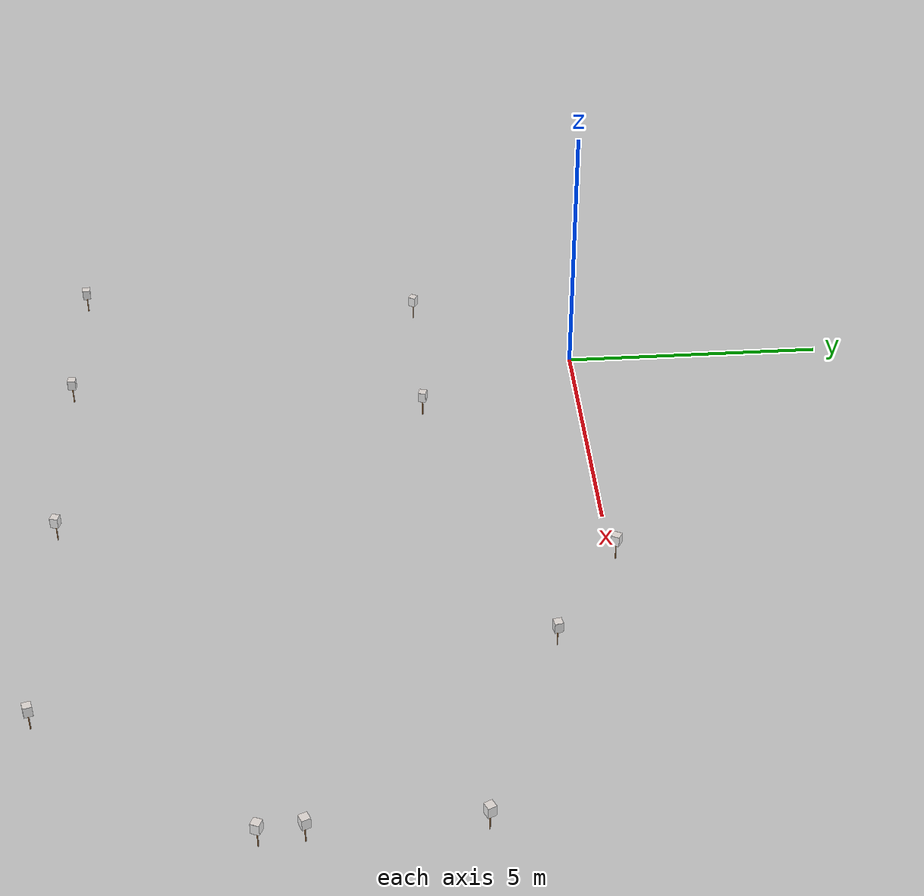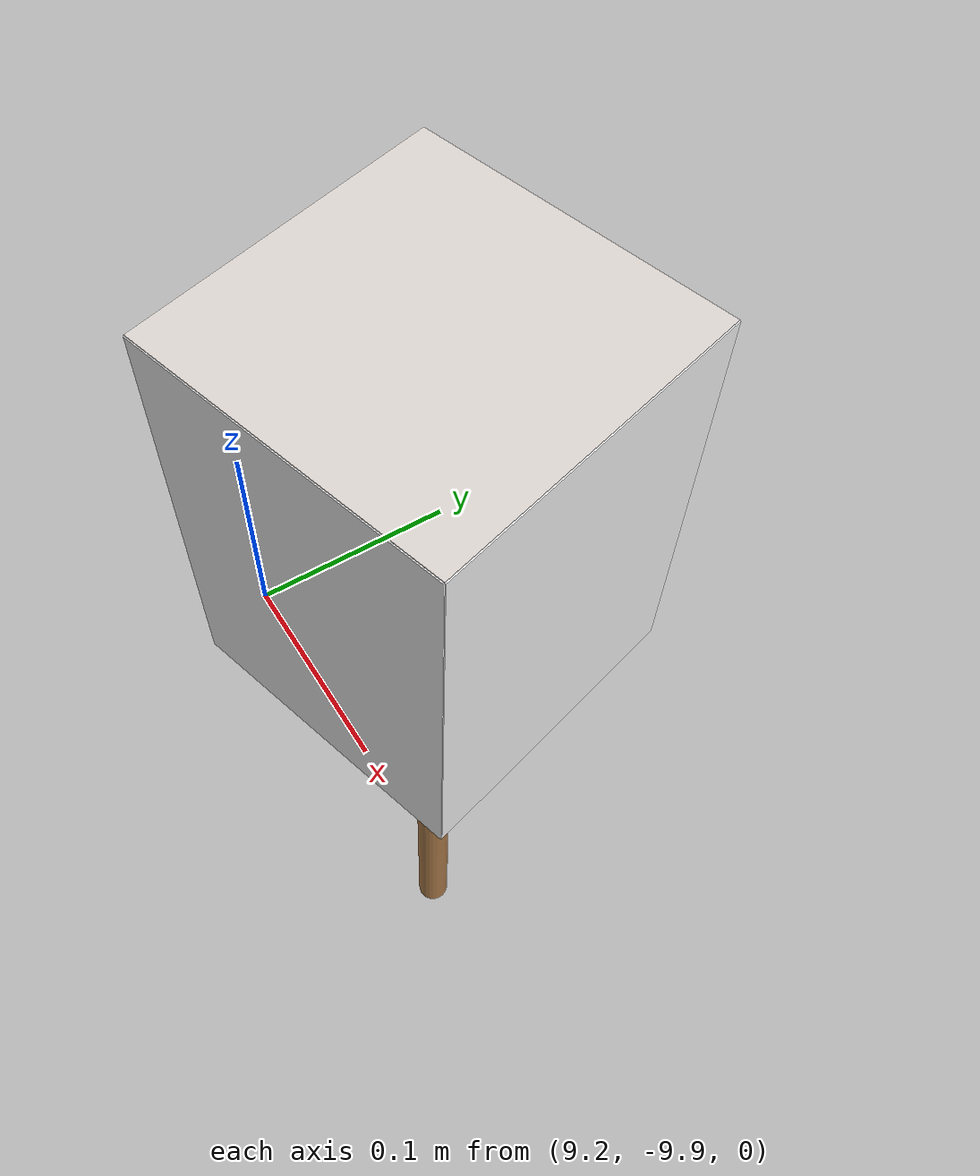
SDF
<sdf version="1.6">
 <world name="husarion_world">
  <physics name="1ms" type="ode">
   <max_step_size>0.01</max_step_size>
   <real_time_factor>1.0</real_time_factor>
  </physics>
  <plugin filename="gz-sim-contact-system" name="gz::sim::systems::Contact"/>
  <plugin filename="gz-sim-imu-system" name="gz::sim::systems::Imu"/>
  <plugin filename="gz-sim-physics-system" name="gz::sim::systems::Physics"/>
  <plugin filename="gz-sim-scene-broadcaster-system" name="gz::sim::systems::SceneBroadcaster"/>
  <plugin filename="gz-sim-sensors-system" name="gz::sim::systems::Sensors"/>
  <plugin filename="gz-sim-user-commands-system" name="gz::sim::systems::UserCommands"/>
  <spherical_coordinates>
   <surface_model>EARTH_WGS84</surface_model>
   <world_frame_orientation>ENU</world_frame_orientation>
   <latitude_deg>50.088384</latitude_deg>
   <longitude_deg>19.939128</longitude_deg>
   <elevation>0</elevation>
   <heading_deg>0</heading_deg>
  </spherical_coordinates>
  <include><uri>model://aruco_pole_textures/aruco_pole_10</uri><pose>12.20 -6.12 -0.1 0 0 -1.97</pose></include>
  <include><uri>model://aruco_pole_textures/aruco_pole_9</uri><pose>9.26 -9.84 -0.35 0 0 1.85</pose></include>
  <include><uri>model://aruco_pole_textures/aruco_pole_8</uri><pose>4.54 -9.86 -0.33 0 0 -0.27</pose></include>
  <include><uri>model://aruco_pole_textures/aruco_pole_7</uri><pose>0.63 -9.89 -0.07 0 0 3.14</pose></include>
  <include><uri>model://aruco_pole_textures/aruco_pole_6</uri><pose>-2.60 -9.88 -0.04 0 0 0.12</pose></include>
  <include><uri>model://aruco_pole_textures/aruco_pole_5</uri><pose>-2.29 -3.06 -0.34 0 0 -0.52</pose></include>
  <include><uri>model://aruco_pole_textures/aruco_pole_4</uri><pose>1.16 -3.05 -0.34 0 0 6.012</pose></include>
  <include><uri>model://aruco_pole_textures/aruco_pole_3</uri><pose>6.29 0.06 0.1 0 0 -0.52</pose></include>
  <include><uri>model://aruco_pole_textures/aruco_pole_2</uri><pose>7.94 -1.14 -0.34 0 0 4.889</pose></include>
  <include><uri>model://aruco_pole_textures/aruco_pole_1</uri><pose>12.21 -2.65 0.0 0 0 2.007</pose></include>
  <include><uri>model://aruco_pole_textures/aruco_pole_0</uri><pose>12.18 -5.41 -0.07 0 0 5.115</pose></include>
 </world>
</sdf>

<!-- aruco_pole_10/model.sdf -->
<sdf version="1.7">
  <!-- Auto-generated SDF for ArUco Pole with Tag 10 -->
  <!-- Box visual faces are 0.1 wide/deep, 0.2 high. Box is closed top/bottom. -->
  <model name="aruco_pole_10"> <!-- Descriptive model name -->
    <static>true</static>
    <link name="aruco_pole_link">

      <!-- === Pole === -->
      <collision name="pole_collision">
        <pose>0 0 0.17250 0 0 0</pose>
        <geometry><cylinder><radius>0.01000</radius><length>0.34500</length></cylinder></geometry>
      </collision>
      <visual name="pole_visual">
        <pose>0 0 0.17250 0 0 0</pose>
        <geometry><cylinder><radius>0.01000</radius><length>0.34500</length></cylinder></geometry>
        <material><script><uri>file://media/materials/scripts/gazebo.material</uri><name>Gazebo/Wood</name></script></material>
      </visual>

      <!-- === Main Marker Box COLLISION === -->
      <!-- Defines the physical boundary -->
      <collision name="box_collision">
        <pose>0 0 0.44500 0 0 0</pose>
        <geometry><box><size>0.15000 0.15000 0.20000</size></box></geometry>
      </collision>

      <!-- === Textured Side Panels (Visuals only) === -->
      <!-- Sized and positioned to match the collision box faces -->

      <!-- Front Face Panel (+X) -->
      <visual name="box_face_front_panel">
        <pose>0.07500 0 0.44500 0 0 0</pose>
        <!-- Size: Thickness(X), Width(Y=Depth), Height(Z) -->
        <geometry><box><size>0.00100 0.15000 0.20000</size></box></geometry>
        <material>
          <ambient>1 1 1 1</ambient><diffuse>1 1 1 1</diffuse><specular>0 0 0 1</specular>
          <pbr><metal>
            <albedo_map>model://aruco_pole_textures/materials/textures/aruco_tag_10.png</albedo_map>
            <metalness>0.0</metalness><roughness>1.0</roughness>
          </metal></pbr>
        </material>
      </visual>

      <!-- Back Face Panel (-X) -->
      <visual name="box_face_back_panel">
        <pose>-0.07500 0 0.44500 0 0 0</pose>
         <!-- Size: Thickness(X), Width(Y=Depth), Height(Z) -->
        <geometry><box><size>0.00100 0.15000 0.20000</size></box></geometry>
         <material>
           <ambient>1 1 1 1</ambient><diffuse>1 1 1 1</diffuse><specular>0 0 0 1</specular>
           <pbr><metal>
             <albedo_map>model://aruco_pole_textures/materials/textures/aruco_tag_10.png</albedo_map>
             <metalness>0.0</metalness><roughness>1.0</roughness>
           </metal></pbr>
         </material>
      </visual>

      <!-- Right Face Panel (+Y) -->
      <visual name="box_face_right_panel">
        <pose>0 0.07500 0.44500 0 0 0</pose>
         <!-- Size: Width(X), Thickness(Y), Height(Z) -->
        <geometry><box><size>0.15000 0.00100 0.20000</size></box></geometry>
         <material>
           <ambient>1 1 1 1</ambient><diffuse>1 1 1 1</diffuse><specular>0 0 0 1</specular>
           <pbr><metal>
             <albedo_map>model://aruco_pole_textures/materials/textures/aruco_tag_10.png</albedo_map>
             <metalness>0.0</metalness><roughness>1.0</roughness>
           </metal></pbr>
         </material>
      </visual>

      <!-- Left Face Panel (-Y) -->
      <visual name="box_face_left_panel">
        <pose>0 -0.07500 0.44500 0 0 0</pose>
        <!-- Size: Width(X), Thickness(Y), Height(Z) -->
        <geometry><box><size>0.15000 0.00100 0.20000</size></box></geometry>
         <material>
           <ambient>1 1 1 1</ambient><diffuse>1 1 1 1</diffuse><specular>0 0 0 1</specular>
           <pbr><metal>
             <albedo_map>model://aruco_pole_textures/materials/textures/aruco_tag_10.png</albedo_map>
             <metalness>0.0</metalness><roughness>1.0</roughness>
           </metal></pbr>
         </material>
      </visual>

      <!-- === Top and Bottom Caps (Visuals only, No Texture) === -->

      <!-- Top Face Panel (+Z) -->
      <visual name="box_face_top_panel">
        <pose>0 0 0.54500 0 0 0</pose>
        <!-- Size: Width(X), Length(Y=Depth), Thickness(Z) -->
        <geometry><box><size>0.15000 0.15000 0.00100</size></box></geometry>
        <material>
          <ambient>0.590 0.571 0.560 1.0</ambient>
          <diffuse>0.843 0.816 0.800 1</diffuse>
          <specular>0.1 0.1 0.1 1</specular>
        </material>
      </visual>

      <!-- Bottom Face Panel (-Z) -->
      <visual name="box_face_bottom_panel">
        <pose>0 0 0.34500 0 0 0</pose>
        <!-- Size: Width(X), Length(Y=Depth), Thickness(Z) -->
        <geometry><box><size>0.15000 0.15000 0.00100</size></box></geometry>
         <material>
           <ambient>0.590 0.571 0.560 1.0</ambient>
           <diffuse>0.843 0.816 0.800 1</diffuse>
           <specular>0.1 0.1 0.1 1</specular>
         </material>
      </visual>

    </link>
  </model>
</sdf>

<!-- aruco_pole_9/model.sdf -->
<sdf version="1.7">
  <!-- Auto-generated SDF for ArUco Pole with Tag 9 -->
  <!-- Box visual faces are 0.1 wide/deep, 0.2 high. Box is closed top/bottom. -->
  <model name="aruco_pole_9"> <!-- Descriptive model name -->
    <static>true</static>
    <link name="aruco_pole_link">

      <!-- === Pole === -->
      <collision name="pole_collision">
        <pose>0 0 0.17250 0 0 0</pose>
        <geometry><cylinder><radius>0.01000</radius><length>0.34500</length></cylinder></geometry>
      </collision>
      <visual name="pole_visual">
        <pose>0 0 0.17250 0 0 0</pose>
        <geometry><cylinder><radius>0.01000</radius><length>0.34500</length></cylinder></geometry>
        <material><script><uri>file://media/materials/scripts/gazebo.material</uri><name>Gazebo/Wood</name></script></material>
      </visual>

      <!-- === Main Marker Box COLLISION === -->
      <!-- Defines the physical boundary -->
      <collision name="box_collision">
        <pose>0 0 0.44500 0 0 0</pose>
        <geometry><box><size>0.15000 0.15000 0.20000</size></box></geometry>
      </collision>

      <!-- === Textured Side Panels (Visuals only) === -->
      <!-- Sized and positioned to match the collision box faces -->

      <!-- Front Face Panel (+X) -->
      <visual name="box_face_front_panel">
        <pose>0.07500 0 0.44500 0 0 0</pose>
        <!-- Size: Thickness(X), Width(Y=Depth), Height(Z) -->
        <geometry><box><size>0.00100 0.15000 0.20000</size></box></geometry>
        <material>
          <ambient>1 1 1 1</ambient><diffuse>1 1 1 1</diffuse><specular>0 0 0 1</specular>
          <pbr><metal>
            <albedo_map>model://aruco_pole_textures/materials/textures/aruco_tag_9.png</albedo_map>
            <metalness>0.0</metalness><roughness>1.0</roughness>
          </metal></pbr>
        </material>
      </visual>

      <!-- Back Face Panel (-X) -->
      <visual name="box_face_back_panel">
        <pose>-0.07500 0 0.44500 0 0 0</pose>
         <!-- Size: Thickness(X), Width(Y=Depth), Height(Z) -->
        <geometry><box><size>0.00100 0.15000 0.20000</size></box></geometry>
         <material>
           <ambient>1 1 1 1</ambient><diffuse>1 1 1 1</diffuse><specular>0 0 0 1</specular>
           <pbr><metal>
             <albedo_map>model://aruco_pole_textures/materials/textures/aruco_tag_9.png</albedo_map>
             <metalness>0.0</metalness><roughness>1.0</roughness>
           </metal></pbr>
         </material>
      </visual>

      <!-- Right Face Panel (+Y) -->
      <visual name="box_face_right_panel">
        <pose>0 0.07500 0.44500 0 0 0</pose>
         <!-- Size: Width(X), Thickness(Y), Height(Z) -->
        <geometry><box><size>0.15000 0.00100 0.20000</size></box></geometry>
         <material>
           <ambient>1 1 1 1</ambient><diffuse>1 1 1 1</diffuse><specular>0 0 0 1</specular>
           <pbr><metal>
             <albedo_map>model://aruco_pole_textures/materials/textures/aruco_tag_9.png</albedo_map>
             <metalness>0.0</metalness><roughness>1.0</roughness>
           </metal></pbr>
         </material>
      </visual>

      <!-- Left Face Panel (-Y) -->
      <visual name="box_face_left_panel">
        <pose>0 -0.07500 0.44500 0 0 0</pose>
        <!-- Size: Width(X), Thickness(Y), Height(Z) -->
        <geometry><box><size>0.15000 0.00100 0.20000</size></box></geometry>
         <material>
           <ambient>1 1 1 1</ambient><diffuse>1 1 1 1</diffuse><specular>0 0 0 1</specular>
           <pbr><metal>
             <albedo_map>model://aruco_pole_textures/materials/textures/aruco_tag_9.png</albedo_map>
             <metalness>0.0</metalness><roughness>1.0</roughness>
           </metal></pbr>
         </material>
      </visual>

      <!-- === Top and Bottom Caps (Visuals only, No Texture) === -->

      <!-- Top Face Panel (+Z) -->
      <visual name="box_face_top_panel">
        <pose>0 0 0.54500 0 0 0</pose>
        <!-- Size: Width(X), Length(Y=Depth), Thickness(Z) -->
        <geometry><box><size>0.15000 0.15000 0.00100</size></box></geometry>
        <material>
          <ambient>0.590 0.571 0.560 1.0</ambient>
          <diffuse>0.843 0.816 0.800 1</diffuse>
          <specular>0.1 0.1 0.1 1</specular>
        </material>
      </visual>

      <!-- Bottom Face Panel (-Z) -->
      <visual name="box_face_bottom_panel">
        <pose>0 0 0.34500 0 0 0</pose>
        <!-- Size: Width(X), Length(Y=Depth), Thickness(Z) -->
        <geometry><box><size>0.15000 0.15000 0.00100</size></box></geometry>
         <material>
           <ambient>0.590 0.571 0.560 1.0</ambient>
           <diffuse>0.843 0.816 0.800 1</diffuse>
           <specular>0.1 0.1 0.1 1</specular>
         </material>
      </visual>

    </link>
  </model>
</sdf>

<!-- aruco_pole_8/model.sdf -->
<sdf version="1.7">
  <!-- Auto-generated SDF for ArUco Pole with Tag 8 -->
  <!-- Box visual faces are 0.1 wide/deep, 0.2 high. Box is closed top/bottom. -->
  <model name="aruco_pole_8"> <!-- Descriptive model name -->
    <static>true</static>
    <link name="aruco_pole_link">

      <!-- === Pole === -->
      <collision name="pole_collision">
        <pose>0 0 0.17250 0 0 0</pose>
        <geometry><cylinder><radius>0.01000</radius><length>0.34500</length></cylinder></geometry>
      </collision>
      <visual name="pole_visual">
        <pose>0 0 0.17250 0 0 0</pose>
        <geometry><cylinder><radius>0.01000</radius><length>0.34500</length></cylinder></geometry>
        <material><script><uri>file://media/materials/scripts/gazebo.material</uri><name>Gazebo/Wood</name></script></material>
      </visual>

      <!-- === Main Marker Box COLLISION === -->
      <!-- Defines the physical boundary -->
      <collision name="box_collision">
        <pose>0 0 0.44500 0 0 0</pose>
        <geometry><box><size>0.15000 0.15000 0.20000</size></box></geometry>
      </collision>

      <!-- === Textured Side Panels (Visuals only) === -->
      <!-- Sized and positioned to match the collision box faces -->

      <!-- Front Face Panel (+X) -->
      <visual name="box_face_front_panel">
        <pose>0.07500 0 0.44500 0 0 0</pose>
        <!-- Size: Thickness(X), Width(Y=Depth), Height(Z) -->
        <geometry><box><size>0.00100 0.15000 0.20000</size></box></geometry>
        <material>
          <ambient>1 1 1 1</ambient><diffuse>1 1 1 1</diffuse><specular>0 0 0 1</specular>
          <pbr><metal>
            <albedo_map>model://aruco_pole_textures/materials/textures/aruco_tag_8.png</albedo_map>
            <metalness>0.0</metalness><roughness>1.0</roughness>
          </metal></pbr>
        </material>
      </visual>

      <!-- Back Face Panel (-X) -->
      <visual name="box_face_back_panel">
        <pose>-0.07500 0 0.44500 0 0 0</pose>
         <!-- Size: Thickness(X), Width(Y=Depth), Height(Z) -->
        <geometry><box><size>0.00100 0.15000 0.20000</size></box></geometry>
         <material>
           <ambient>1 1 1 1</ambient><diffuse>1 1 1 1</diffuse><specular>0 0 0 1</specular>
           <pbr><metal>
             <albedo_map>model://aruco_pole_textures/materials/textures/aruco_tag_8.png</albedo_map>
             <metalness>0.0</metalness><roughness>1.0</roughness>
           </metal></pbr>
         </material>
      </visual>

      <!-- Right Face Panel (+Y) -->
      <visual name="box_face_right_panel">
        <pose>0 0.07500 0.44500 0 0 0</pose>
         <!-- Size: Width(X), Thickness(Y), Height(Z) -->
        <geometry><box><size>0.15000 0.00100 0.20000</size></box></geometry>
         <material>
           <ambient>1 1 1 1</ambient><diffuse>1 1 1 1</diffuse><specular>0 0 0 1</specular>
           <pbr><metal>
             <albedo_map>model://aruco_pole_textures/materials/textures/aruco_tag_8.png</albedo_map>
             <metalness>0.0</metalness><roughness>1.0</roughness>
           </metal></pbr>
         </material>
      </visual>

      <!-- Left Face Panel (-Y) -->
      <visual name="box_face_left_panel">
        <pose>0 -0.07500 0.44500 0 0 0</pose>
        <!-- Size: Width(X), Thickness(Y), Height(Z) -->
        <geometry><box><size>0.15000 0.00100 0.20000</size></box></geometry>
         <material>
           <ambient>1 1 1 1</ambient><diffuse>1 1 1 1</diffuse><specular>0 0 0 1</specular>
           <pbr><metal>
             <albedo_map>model://aruco_pole_textures/materials/textures/aruco_tag_8.png</albedo_map>
             <metalness>0.0</metalness><roughness>1.0</roughness>
           </metal></pbr>
         </material>
      </visual>

      <!-- === Top and Bottom Caps (Visuals only, No Texture) === -->

      <!-- Top Face Panel (+Z) -->
      <visual name="box_face_top_panel">
        <pose>0 0 0.54500 0 0 0</pose>
        <!-- Size: Width(X), Length(Y=Depth), Thickness(Z) -->
        <geometry><box><size>0.15000 0.15000 0.00100</size></box></geometry>
        <material>
          <ambient>0.590 0.571 0.560 1.0</ambient>
          <diffuse>0.843 0.816 0.800 1</diffuse>
          <specular>0.1 0.1 0.1 1</specular>
        </material>
      </visual>

      <!-- Bottom Face Panel (-Z) -->
      <visual name="box_face_bottom_panel">
        <pose>0 0 0.34500 0 0 0</pose>
        <!-- Size: Width(X), Length(Y=Depth), Thickness(Z) -->
        <geometry><box><size>0.15000 0.15000 0.00100</size></box></geometry>
         <material>
           <ambient>0.590 0.571 0.560 1.0</ambient>
           <diffuse>0.843 0.816 0.800 1</diffuse>
           <specular>0.1 0.1 0.1 1</specular>
         </material>
      </visual>

    </link>
  </model>
</sdf>

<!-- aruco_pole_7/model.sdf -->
<sdf version="1.7">
  <!-- Auto-generated SDF for ArUco Pole with Tag 7 -->
  <!-- Box visual faces are 0.1 wide/deep, 0.2 high. Box is closed top/bottom. -->
  <model name="aruco_pole_7"> <!-- Descriptive model name -->
    <static>true</static>
    <link name="aruco_pole_link">

      <!-- === Pole === -->
      <collision name="pole_collision">
        <pose>0 0 0.17250 0 0 0</pose>
        <geometry><cylinder><radius>0.01000</radius><length>0.34500</length></cylinder></geometry>
      </collision>
      <visual name="pole_visual">
        <pose>0 0 0.17250 0 0 0</pose>
        <geometry><cylinder><radius>0.01000</radius><length>0.34500</length></cylinder></geometry>
        <material><script><uri>file://media/materials/scripts/gazebo.material</uri><name>Gazebo/Wood</name></script></material>
      </visual>

      <!-- === Main Marker Box COLLISION === -->
      <!-- Defines the physical boundary -->
      <collision name="box_collision">
        <pose>0 0 0.44500 0 0 0</pose>
        <geometry><box><size>0.15000 0.15000 0.20000</size></box></geometry>
      </collision>

      <!-- === Textured Side Panels (Visuals only) === -->
      <!-- Sized and positioned to match the collision box faces -->

      <!-- Front Face Panel (+X) -->
      <visual name="box_face_front_panel">
        <pose>0.07500 0 0.44500 0 0 0</pose>
        <!-- Size: Thickness(X), Width(Y=Depth), Height(Z) -->
        <geometry><box><size>0.00100 0.15000 0.20000</size></box></geometry>
        <material>
          <ambient>1 1 1 1</ambient><diffuse>1 1 1 1</diffuse><specular>0 0 0 1</specular>
          <pbr><metal>
            <albedo_map>model://aruco_pole_textures/materials/textures/aruco_tag_7.png</albedo_map>
            <metalness>0.0</metalness><roughness>1.0</roughness>
          </metal></pbr>
        </material>
      </visual>

      <!-- Back Face Panel (-X) -->
      <visual name="box_face_back_panel">
        <pose>-0.07500 0 0.44500 0 0 0</pose>
         <!-- Size: Thickness(X), Width(Y=Depth), Height(Z) -->
        <geometry><box><size>0.00100 0.15000 0.20000</size></box></geometry>
         <material>
           <ambient>1 1 1 1</ambient><diffuse>1 1 1 1</diffuse><specular>0 0 0 1</specular>
           <pbr><metal>
             <albedo_map>model://aruco_pole_textures/materials/textures/aruco_tag_7.png</albedo_map>
             <metalness>0.0</metalness><roughness>1.0</roughness>
           </metal></pbr>
         </material>
      </visual>

      <!-- Right Face Panel (+Y) -->
      <visual name="box_face_right_panel">
        <pose>0 0.07500 0.44500 0 0 0</pose>
         <!-- Size: Width(X), Thickness(Y), Height(Z) -->
        <geometry><box><size>0.15000 0.00100 0.20000</size></box></geometry>
         <material>
           <ambient>1 1 1 1</ambient><diffuse>1 1 1 1</diffuse><specular>0 0 0 1</specular>
           <pbr><metal>
             <albedo_map>model://aruco_pole_textures/materials/textures/aruco_tag_7.png</albedo_map>
             <metalness>0.0</metalness><roughness>1.0</roughness>
           </metal></pbr>
         </material>
      </visual>

      <!-- Left Face Panel (-Y) -->
      <visual name="box_face_left_panel">
        <pose>0 -0.07500 0.44500 0 0 0</pose>
        <!-- Size: Width(X), Thickness(Y), Height(Z) -->
        <geometry><box><size>0.15000 0.00100 0.20000</size></box></geometry>
         <material>
           <ambient>1 1 1 1</ambient><diffuse>1 1 1 1</diffuse><specular>0 0 0 1</specular>
           <pbr><metal>
             <albedo_map>model://aruco_pole_textures/materials/textures/aruco_tag_7.png</albedo_map>
             <metalness>0.0</metalness><roughness>1.0</roughness>
           </metal></pbr>
         </material>
      </visual>

      <!-- === Top and Bottom Caps (Visuals only, No Texture) === -->

      <!-- Top Face Panel (+Z) -->
      <visual name="box_face_top_panel">
        <pose>0 0 0.54500 0 0 0</pose>
        <!-- Size: Width(X), Length(Y=Depth), Thickness(Z) -->
        <geometry><box><size>0.15000 0.15000 0.00100</size></box></geometry>
        <material>
          <ambient>0.590 0.571 0.560 1.0</ambient>
          <diffuse>0.843 0.816 0.800 1</diffuse>
          <specular>0.1 0.1 0.1 1</specular>
        </material>
      </visual>

      <!-- Bottom Face Panel (-Z) -->
      <visual name="box_face_bottom_panel">
        <pose>0 0 0.34500 0 0 0</pose>
        <!-- Size: Width(X), Length(Y=Depth), Thickness(Z) -->
        <geometry><box><size>0.15000 0.15000 0.00100</size></box></geometry>
         <material>
           <ambient>0.590 0.571 0.560 1.0</ambient>
           <diffuse>0.843 0.816 0.800 1</diffuse>
           <specular>0.1 0.1 0.1 1</specular>
         </material>
      </visual>

    </link>
  </model>
</sdf>

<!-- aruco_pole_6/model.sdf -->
<sdf version="1.7">
  <!-- Auto-generated SDF for ArUco Pole with Tag 6 -->
  <!-- Box visual faces are 0.1 wide/deep, 0.2 high. Box is closed top/bottom. -->
  <model name="aruco_pole_6"> <!-- Descriptive model name -->
    <static>true</static>
    <link name="aruco_pole_link">

      <!-- === Pole === -->
      <collision name="pole_collision">
        <pose>0 0 0.17250 0 0 0</pose>
        <geometry><cylinder><radius>0.01000</radius><length>0.34500</length></cylinder></geometry>
      </collision>
      <visual name="pole_visual">
        <pose>0 0 0.17250 0 0 0</pose>
        <geometry><cylinder><radius>0.01000</radius><length>0.34500</length></cylinder></geometry>
        <material><script><uri>file://media/materials/scripts/gazebo.material</uri><name>Gazebo/Wood</name></script></material>
      </visual>

      <!-- === Main Marker Box COLLISION === -->
      <!-- Defines the physical boundary -->
      <collision name="box_collision">
        <pose>0 0 0.44500 0 0 0</pose>
        <geometry><box><size>0.15000 0.15000 0.20000</size></box></geometry>
      </collision>

      <!-- === Textured Side Panels (Visuals only) === -->
      <!-- Sized and positioned to match the collision box faces -->

      <!-- Front Face Panel (+X) -->
      <visual name="box_face_front_panel">
        <pose>0.07500 0 0.44500 0 0 0</pose>
        <!-- Size: Thickness(X), Width(Y=Depth), Height(Z) -->
        <geometry><box><size>0.00100 0.15000 0.20000</size></box></geometry>
        <material>
          <ambient>1 1 1 1</ambient><diffuse>1 1 1 1</diffuse><specular>0 0 0 1</specular>
          <pbr><metal>
            <albedo_map>model://aruco_pole_textures/materials/textures/aruco_tag_6.png</albedo_map>
            <metalness>0.0</metalness><roughness>1.0</roughness>
          </metal></pbr>
        </material>
      </visual>

      <!-- Back Face Panel (-X) -->
      <visual name="box_face_back_panel">
        <pose>-0.07500 0 0.44500 0 0 0</pose>
         <!-- Size: Thickness(X), Width(Y=Depth), Height(Z) -->
        <geometry><box><size>0.00100 0.15000 0.20000</size></box></geometry>
         <material>
           <ambient>1 1 1 1</ambient><diffuse>1 1 1 1</diffuse><specular>0 0 0 1</specular>
           <pbr><metal>
             <albedo_map>model://aruco_pole_textures/materials/textures/aruco_tag_6.png</albedo_map>
             <metalness>0.0</metalness><roughness>1.0</roughness>
           </metal></pbr>
         </material>
      </visual>

      <!-- Right Face Panel (+Y) -->
      <visual name="box_face_right_panel">
        <pose>0 0.07500 0.44500 0 0 0</pose>
         <!-- Size: Width(X), Thickness(Y), Height(Z) -->
        <geometry><box><size>0.15000 0.00100 0.20000</size></box></geometry>
         <material>
           <ambient>1 1 1 1</ambient><diffuse>1 1 1 1</diffuse><specular>0 0 0 1</specular>
           <pbr><metal>
             <albedo_map>model://aruco_pole_textures/materials/textures/aruco_tag_6.png</albedo_map>
             <metalness>0.0</metalness><roughness>1.0</roughness>
           </metal></pbr>
         </material>
      </visual>

      <!-- Left Face Panel (-Y) -->
      <visual name="box_face_left_panel">
        <pose>0 -0.07500 0.44500 0 0 0</pose>
        <!-- Size: Width(X), Thickness(Y), Height(Z) -->
        <geometry><box><size>0.15000 0.00100 0.20000</size></box></geometry>
         <material>
           <ambient>1 1 1 1</ambient><diffuse>1 1 1 1</diffuse><specular>0 0 0 1</specular>
           <pbr><metal>
             <albedo_map>model://aruco_pole_textures/materials/textures/aruco_tag_6.png</albedo_map>
             <metalness>0.0</metalness><roughness>1.0</roughness>
           </metal></pbr>
         </material>
      </visual>

      <!-- === Top and Bottom Caps (Visuals only, No Texture) === -->

      <!-- Top Face Panel (+Z) -->
      <visual name="box_face_top_panel">
        <pose>0 0 0.54500 0 0 0</pose>
        <!-- Size: Width(X), Length(Y=Depth), Thickness(Z) -->
        <geometry><box><size>0.15000 0.15000 0.00100</size></box></geometry>
        <material>
          <ambient>0.590 0.571 0.560 1.0</ambient>
          <diffuse>0.843 0.816 0.800 1</diffuse>
          <specular>0.1 0.1 0.1 1</specular>
        </material>
      </visual>

      <!-- Bottom Face Panel (-Z) -->
      <visual name="box_face_bottom_panel">
        <pose>0 0 0.34500 0 0 0</pose>
        <!-- Size: Width(X), Length(Y=Depth), Thickness(Z) -->
        <geometry><box><size>0.15000 0.15000 0.00100</size></box></geometry>
         <material>
           <ambient>0.590 0.571 0.560 1.0</ambient>
           <diffuse>0.843 0.816 0.800 1</diffuse>
           <specular>0.1 0.1 0.1 1</specular>
         </material>
      </visual>

    </link>
  </model>
</sdf>

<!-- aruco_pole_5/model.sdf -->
<sdf version="1.7">
  <!-- Auto-generated SDF for ArUco Pole with Tag 5 -->
  <!-- Box visual faces are 0.1 wide/deep, 0.2 high. Box is closed top/bottom. -->
  <model name="aruco_pole_5"> <!-- Descriptive model name -->
    <static>true</static>
    <link name="aruco_pole_link">

      <!-- === Pole === -->
      <collision name="pole_collision">
        <pose>0 0 0.17250 0 0 0</pose>
        <geometry><cylinder><radius>0.01000</radius><length>0.34500</length></cylinder></geometry>
      </collision>
      <visual name="pole_visual">
        <pose>0 0 0.17250 0 0 0</pose>
        <geometry><cylinder><radius>0.01000</radius><length>0.34500</length></cylinder></geometry>
        <material><script><uri>file://media/materials/scripts/gazebo.material</uri><name>Gazebo/Wood</name></script></material>
      </visual>

      <!-- === Main Marker Box COLLISION === -->
      <!-- Defines the physical boundary -->
      <collision name="box_collision">
        <pose>0 0 0.44500 0 0 0</pose>
        <geometry><box><size>0.15000 0.15000 0.20000</size></box></geometry>
      </collision>

      <!-- === Textured Side Panels (Visuals only) === -->
      <!-- Sized and positioned to match the collision box faces -->

      <!-- Front Face Panel (+X) -->
      <visual name="box_face_front_panel">
        <pose>0.07500 0 0.44500 0 0 0</pose>
        <!-- Size: Thickness(X), Width(Y=Depth), Height(Z) -->
        <geometry><box><size>0.00100 0.15000 0.20000</size></box></geometry>
        <material>
          <ambient>1 1 1 1</ambient><diffuse>1 1 1 1</diffuse><specular>0 0 0 1</specular>
          <pbr><metal>
            <albedo_map>model://aruco_pole_textures/materials/textures/aruco_tag_5.png</albedo_map>
            <metalness>0.0</metalness><roughness>1.0</roughness>
          </metal></pbr>
        </material>
      </visual>

      <!-- Back Face Panel (-X) -->
      <visual name="box_face_back_panel">
        <pose>-0.07500 0 0.44500 0 0 0</pose>
         <!-- Size: Thickness(X), Width(Y=Depth), Height(Z) -->
        <geometry><box><size>0.00100 0.15000 0.20000</size></box></geometry>
         <material>
           <ambient>1 1 1 1</ambient><diffuse>1 1 1 1</diffuse><specular>0 0 0 1</specular>
           <pbr><metal>
             <albedo_map>model://aruco_pole_textures/materials/textures/aruco_tag_5.png</albedo_map>
             <metalness>0.0</metalness><roughness>1.0</roughness>
           </metal></pbr>
         </material>
      </visual>

      <!-- Right Face Panel (+Y) -->
      <visual name="box_face_right_panel">
        <pose>0 0.07500 0.44500 0 0 0</pose>
         <!-- Size: Width(X), Thickness(Y), Height(Z) -->
        <geometry><box><size>0.15000 0.00100 0.20000</size></box></geometry>
         <material>
           <ambient>1 1 1 1</ambient><diffuse>1 1 1 1</diffuse><specular>0 0 0 1</specular>
           <pbr><metal>
             <albedo_map>model://aruco_pole_textures/materials/textures/aruco_tag_5.png</albedo_map>
             <metalness>0.0</metalness><roughness>1.0</roughness>
           </metal></pbr>
         </material>
      </visual>

      <!-- Left Face Panel (-Y) -->
      <visual name="box_face_left_panel">
        <pose>0 -0.07500 0.44500 0 0 0</pose>
        <!-- Size: Width(X), Thickness(Y), Height(Z) -->
        <geometry><box><size>0.15000 0.00100 0.20000</size></box></geometry>
         <material>
           <ambient>1 1 1 1</ambient><diffuse>1 1 1 1</diffuse><specular>0 0 0 1</specular>
           <pbr><metal>
             <albedo_map>model://aruco_pole_textures/materials/textures/aruco_tag_5.png</albedo_map>
             <metalness>0.0</metalness><roughness>1.0</roughness>
           </metal></pbr>
         </material>
      </visual>

      <!-- === Top and Bottom Caps (Visuals only, No Texture) === -->

      <!-- Top Face Panel (+Z) -->
      <visual name="box_face_top_panel">
        <pose>0 0 0.54500 0 0 0</pose>
        <!-- Size: Width(X), Length(Y=Depth), Thickness(Z) -->
        <geometry><box><size>0.15000 0.15000 0.00100</size></box></geometry>
        <material>
          <ambient>0.590 0.571 0.560 1.0</ambient>
          <diffuse>0.843 0.816 0.800 1</diffuse>
          <specular>0.1 0.1 0.1 1</specular>
        </material>
      </visual>

      <!-- Bottom Face Panel (-Z) -->
      <visual name="box_face_bottom_panel">
        <pose>0 0 0.34500 0 0 0</pose>
        <!-- Size: Width(X), Length(Y=Depth), Thickness(Z) -->
        <geometry><box><size>0.15000 0.15000 0.00100</size></box></geometry>
         <material>
           <ambient>0.590 0.571 0.560 1.0</ambient>
           <diffuse>0.843 0.816 0.800 1</diffuse>
           <specular>0.1 0.1 0.1 1</specular>
         </material>
      </visual>

    </link>
  </model>
</sdf>

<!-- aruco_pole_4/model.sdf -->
<sdf version="1.7">
  <!-- Auto-generated SDF for ArUco Pole with Tag 4 -->
  <!-- Box visual faces are 0.1 wide/deep, 0.2 high. Box is closed top/bottom. -->
  <model name="aruco_pole_4"> <!-- Descriptive model name -->
    <static>true</static>
    <link name="aruco_pole_link">

      <!-- === Pole === -->
      <collision name="pole_collision">
        <pose>0 0 0.17250 0 0 0</pose>
        <geometry><cylinder><radius>0.01000</radius><length>0.34500</length></cylinder></geometry>
      </collision>
      <visual name="pole_visual">
        <pose>0 0 0.17250 0 0 0</pose>
        <geometry><cylinder><radius>0.01000</radius><length>0.34500</length></cylinder></geometry>
        <material><script><uri>file://media/materials/scripts/gazebo.material</uri><name>Gazebo/Wood</name></script></material>
      </visual>

      <!-- === Main Marker Box COLLISION === -->
      <!-- Defines the physical boundary -->
      <collision name="box_collision">
        <pose>0 0 0.44500 0 0 0</pose>
        <geometry><box><size>0.15000 0.15000 0.20000</size></box></geometry>
      </collision>

      <!-- === Textured Side Panels (Visuals only) === -->
      <!-- Sized and positioned to match the collision box faces -->

      <!-- Front Face Panel (+X) -->
      <visual name="box_face_front_panel">
        <pose>0.07500 0 0.44500 0 0 0</pose>
        <!-- Size: Thickness(X), Width(Y=Depth), Height(Z) -->
        <geometry><box><size>0.00100 0.15000 0.20000</size></box></geometry>
        <material>
          <ambient>1 1 1 1</ambient><diffuse>1 1 1 1</diffuse><specular>0 0 0 1</specular>
          <pbr><metal>
            <albedo_map>model://aruco_pole_textures/materials/textures/aruco_tag_4.png</albedo_map>
            <metalness>0.0</metalness><roughness>1.0</roughness>
          </metal></pbr>
        </material>
      </visual>

      <!-- Back Face Panel (-X) -->
      <visual name="box_face_back_panel">
        <pose>-0.07500 0 0.44500 0 0 0</pose>
         <!-- Size: Thickness(X), Width(Y=Depth), Height(Z) -->
        <geometry><box><size>0.00100 0.15000 0.20000</size></box></geometry>
         <material>
           <ambient>1 1 1 1</ambient><diffuse>1 1 1 1</diffuse><specular>0 0 0 1</specular>
           <pbr><metal>
             <albedo_map>model://aruco_pole_textures/materials/textures/aruco_tag_4.png</albedo_map>
             <metalness>0.0</metalness><roughness>1.0</roughness>
           </metal></pbr>
         </material>
      </visual>

      <!-- Right Face Panel (+Y) -->
      <visual name="box_face_right_panel">
        <pose>0 0.07500 0.44500 0 0 0</pose>
         <!-- Size: Width(X), Thickness(Y), Height(Z) -->
        <geometry><box><size>0.15000 0.00100 0.20000</size></box></geometry>
         <material>
           <ambient>1 1 1 1</ambient><diffuse>1 1 1 1</diffuse><specular>0 0 0 1</specular>
           <pbr><metal>
             <albedo_map>model://aruco_pole_textures/materials/textures/aruco_tag_4.png</albedo_map>
             <metalness>0.0</metalness><roughness>1.0</roughness>
           </metal></pbr>
         </material>
      </visual>

      <!-- Left Face Panel (-Y) -->
      <visual name="box_face_left_panel">
        <pose>0 -0.07500 0.44500 0 0 0</pose>
        <!-- Size: Width(X), Thickness(Y), Height(Z) -->
        <geometry><box><size>0.15000 0.00100 0.20000</size></box></geometry>
         <material>
           <ambient>1 1 1 1</ambient><diffuse>1 1 1 1</diffuse><specular>0 0 0 1</specular>
           <pbr><metal>
             <albedo_map>model://aruco_pole_textures/materials/textures/aruco_tag_4.png</albedo_map>
             <metalness>0.0</metalness><roughness>1.0</roughness>
           </metal></pbr>
         </material>
      </visual>

      <!-- === Top and Bottom Caps (Visuals only, No Texture) === -->

      <!-- Top Face Panel (+Z) -->
      <visual name="box_face_top_panel">
        <pose>0 0 0.54500 0 0 0</pose>
        <!-- Size: Width(X), Length(Y=Depth), Thickness(Z) -->
        <geometry><box><size>0.15000 0.15000 0.00100</size></box></geometry>
        <material>
          <ambient>0.590 0.571 0.560 1.0</ambient>
          <diffuse>0.843 0.816 0.800 1</diffuse>
          <specular>0.1 0.1 0.1 1</specular>
        </material>
      </visual>

      <!-- Bottom Face Panel (-Z) -->
      <visual name="box_face_bottom_panel">
        <pose>0 0 0.34500 0 0 0</pose>
        <!-- Size: Width(X), Length(Y=Depth), Thickness(Z) -->
        <geometry><box><size>0.15000 0.15000 0.00100</size></box></geometry>
         <material>
           <ambient>0.590 0.571 0.560 1.0</ambient>
           <diffuse>0.843 0.816 0.800 1</diffuse>
           <specular>0.1 0.1 0.1 1</specular>
         </material>
      </visual>

    </link>
  </model>
</sdf>

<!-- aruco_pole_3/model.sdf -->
<sdf version="1.7">
  <!-- Auto-generated SDF for ArUco Pole with Tag 3 -->
  <!-- Box visual faces are 0.1 wide/deep, 0.2 high. Box is closed top/bottom. -->
  <model name="aruco_pole_3"> <!-- Descriptive model name -->
    <static>true</static>
    <link name="aruco_pole_link">

      <!-- === Pole === -->
      <collision name="pole_collision">
        <pose>0 0 0.17250 0 0 0</pose>
        <geometry><cylinder><radius>0.01000</radius><length>0.34500</length></cylinder></geometry>
      </collision>
      <visual name="pole_visual">
        <pose>0 0 0.17250 0 0 0</pose>
        <geometry><cylinder><radius>0.01000</radius><length>0.34500</length></cylinder></geometry>
        <material><script><uri>file://media/materials/scripts/gazebo.material</uri><name>Gazebo/Wood</name></script></material>
      </visual>

      <!-- === Main Marker Box COLLISION === -->
      <!-- Defines the physical boundary -->
      <collision name="box_collision">
        <pose>0 0 0.44500 0 0 0</pose>
        <geometry><box><size>0.15000 0.15000 0.20000</size></box></geometry>
      </collision>

      <!-- === Textured Side Panels (Visuals only) === -->
      <!-- Sized and positioned to match the collision box faces -->

      <!-- Front Face Panel (+X) -->
      <visual name="box_face_front_panel">
        <pose>0.07500 0 0.44500 0 0 0</pose>
        <!-- Size: Thickness(X), Width(Y=Depth), Height(Z) -->
        <geometry><box><size>0.00100 0.15000 0.20000</size></box></geometry>
        <material>
          <ambient>1 1 1 1</ambient><diffuse>1 1 1 1</diffuse><specular>0 0 0 1</specular>
          <pbr><metal>
            <albedo_map>model://aruco_pole_textures/materials/textures/aruco_tag_3.png</albedo_map>
            <metalness>0.0</metalness><roughness>1.0</roughness>
          </metal></pbr>
        </material>
      </visual>

      <!-- Back Face Panel (-X) -->
      <visual name="box_face_back_panel">
        <pose>-0.07500 0 0.44500 0 0 0</pose>
         <!-- Size: Thickness(X), Width(Y=Depth), Height(Z) -->
        <geometry><box><size>0.00100 0.15000 0.20000</size></box></geometry>
         <material>
           <ambient>1 1 1 1</ambient><diffuse>1 1 1 1</diffuse><specular>0 0 0 1</specular>
           <pbr><metal>
             <albedo_map>model://aruco_pole_textures/materials/textures/aruco_tag_3.png</albedo_map>
             <metalness>0.0</metalness><roughness>1.0</roughness>
           </metal></pbr>
         </material>
      </visual>

      <!-- Right Face Panel (+Y) -->
      <visual name="box_face_right_panel">
        <pose>0 0.07500 0.44500 0 0 0</pose>
         <!-- Size: Width(X), Thickness(Y), Height(Z) -->
        <geometry><box><size>0.15000 0.00100 0.20000</size></box></geometry>
         <material>
           <ambient>1 1 1 1</ambient><diffuse>1 1 1 1</diffuse><specular>0 0 0 1</specular>
           <pbr><metal>
             <albedo_map>model://aruco_pole_textures/materials/textures/aruco_tag_3.png</albedo_map>
             <metalness>0.0</metalness><roughness>1.0</roughness>
           </metal></pbr>
         </material>
      </visual>

      <!-- Left Face Panel (-Y) -->
      <visual name="box_face_left_panel">
        <pose>0 -0.07500 0.44500 0 0 0</pose>
        <!-- Size: Width(X), Thickness(Y), Height(Z) -->
        <geometry><box><size>0.15000 0.00100 0.20000</size></box></geometry>
         <material>
           <ambient>1 1 1 1</ambient><diffuse>1 1 1 1</diffuse><specular>0 0 0 1</specular>
           <pbr><metal>
             <albedo_map>model://aruco_pole_textures/materials/textures/aruco_tag_3.png</albedo_map>
             <metalness>0.0</metalness><roughness>1.0</roughness>
           </metal></pbr>
         </material>
      </visual>

      <!-- === Top and Bottom Caps (Visuals only, No Texture) === -->

      <!-- Top Face Panel (+Z) -->
      <visual name="box_face_top_panel">
        <pose>0 0 0.54500 0 0 0</pose>
        <!-- Size: Width(X), Length(Y=Depth), Thickness(Z) -->
        <geometry><box><size>0.15000 0.15000 0.00100</size></box></geometry>
        <material>
          <ambient>0.590 0.571 0.560 1.0</ambient>
          <diffuse>0.843 0.816 0.800 1</diffuse>
          <specular>0.1 0.1 0.1 1</specular>
        </material>
      </visual>

      <!-- Bottom Face Panel (-Z) -->
      <visual name="box_face_bottom_panel">
        <pose>0 0 0.34500 0 0 0</pose>
        <!-- Size: Width(X), Length(Y=Depth), Thickness(Z) -->
        <geometry><box><size>0.15000 0.15000 0.00100</size></box></geometry>
         <material>
           <ambient>0.590 0.571 0.560 1.0</ambient>
           <diffuse>0.843 0.816 0.800 1</diffuse>
           <specular>0.1 0.1 0.1 1</specular>
         </material>
      </visual>

    </link>
  </model>
</sdf>

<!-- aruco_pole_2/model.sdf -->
<sdf version="1.7">
  <!-- Auto-generated SDF for ArUco Pole with Tag 2 -->
  <!-- Box visual faces are 0.1 wide/deep, 0.2 high. Box is closed top/bottom. -->
  <model name="aruco_pole_2"> <!-- Descriptive model name -->
    <static>true</static>
    <link name="aruco_pole_link">

      <!-- === Pole === -->
      <collision name="pole_collision">
        <pose>0 0 0.17250 0 0 0</pose>
        <geometry><cylinder><radius>0.01000</radius><length>0.34500</length></cylinder></geometry>
      </collision>
      <visual name="pole_visual">
        <pose>0 0 0.17250 0 0 0</pose>
        <geometry><cylinder><radius>0.01000</radius><length>0.34500</length></cylinder></geometry>
        <material><script><uri>file://media/materials/scripts/gazebo.material</uri><name>Gazebo/Wood</name></script></material>
      </visual>

      <!-- === Main Marker Box COLLISION === -->
      <!-- Defines the physical boundary -->
      <collision name="box_collision">
        <pose>0 0 0.44500 0 0 0</pose>
        <geometry><box><size>0.15000 0.15000 0.20000</size></box></geometry>
      </collision>

      <!-- === Textured Side Panels (Visuals only) === -->
      <!-- Sized and positioned to match the collision box faces -->

      <!-- Front Face Panel (+X) -->
      <visual name="box_face_front_panel">
        <pose>0.07500 0 0.44500 0 0 0</pose>
        <!-- Size: Thickness(X), Width(Y=Depth), Height(Z) -->
        <geometry><box><size>0.00100 0.15000 0.20000</size></box></geometry>
        <material>
          <ambient>1 1 1 1</ambient><diffuse>1 1 1 1</diffuse><specular>0 0 0 1</specular>
          <pbr><metal>
            <albedo_map>model://aruco_pole_textures/materials/textures/aruco_tag_2.png</albedo_map>
            <metalness>0.0</metalness><roughness>1.0</roughness>
          </metal></pbr>
        </material>
      </visual>

      <!-- Back Face Panel (-X) -->
      <visual name="box_face_back_panel">
        <pose>-0.07500 0 0.44500 0 0 0</pose>
         <!-- Size: Thickness(X), Width(Y=Depth), Height(Z) -->
        <geometry><box><size>0.00100 0.15000 0.20000</size></box></geometry>
         <material>
           <ambient>1 1 1 1</ambient><diffuse>1 1 1 1</diffuse><specular>0 0 0 1</specular>
           <pbr><metal>
             <albedo_map>model://aruco_pole_textures/materials/textures/aruco_tag_2.png</albedo_map>
             <metalness>0.0</metalness><roughness>1.0</roughness>
           </metal></pbr>
         </material>
      </visual>

      <!-- Right Face Panel (+Y) -->
      <visual name="box_face_right_panel">
        <pose>0 0.07500 0.44500 0 0 0</pose>
         <!-- Size: Width(X), Thickness(Y), Height(Z) -->
        <geometry><box><size>0.15000 0.00100 0.20000</size></box></geometry>
         <material>
           <ambient>1 1 1 1</ambient><diffuse>1 1 1 1</diffuse><specular>0 0 0 1</specular>
           <pbr><metal>
             <albedo_map>model://aruco_pole_textures/materials/textures/aruco_tag_2.png</albedo_map>
             <metalness>0.0</metalness><roughness>1.0</roughness>
           </metal></pbr>
         </material>
      </visual>

      <!-- Left Face Panel (-Y) -->
      <visual name="box_face_left_panel">
        <pose>0 -0.07500 0.44500 0 0 0</pose>
        <!-- Size: Width(X), Thickness(Y), Height(Z) -->
        <geometry><box><size>0.15000 0.00100 0.20000</size></box></geometry>
         <material>
           <ambient>1 1 1 1</ambient><diffuse>1 1 1 1</diffuse><specular>0 0 0 1</specular>
           <pbr><metal>
             <albedo_map>model://aruco_pole_textures/materials/textures/aruco_tag_2.png</albedo_map>
             <metalness>0.0</metalness><roughness>1.0</roughness>
           </metal></pbr>
         </material>
      </visual>

      <!-- === Top and Bottom Caps (Visuals only, No Texture) === -->

      <!-- Top Face Panel (+Z) -->
      <visual name="box_face_top_panel">
        <pose>0 0 0.54500 0 0 0</pose>
        <!-- Size: Width(X), Length(Y=Depth), Thickness(Z) -->
        <geometry><box><size>0.15000 0.15000 0.00100</size></box></geometry>
        <material>
          <ambient>0.590 0.571 0.560 1.0</ambient>
          <diffuse>0.843 0.816 0.800 1</diffuse>
          <specular>0.1 0.1 0.1 1</specular>
        </material>
      </visual>

      <!-- Bottom Face Panel (-Z) -->
      <visual name="box_face_bottom_panel">
        <pose>0 0 0.34500 0 0 0</pose>
        <!-- Size: Width(X), Length(Y=Depth), Thickness(Z) -->
        <geometry><box><size>0.15000 0.15000 0.00100</size></box></geometry>
         <material>
           <ambient>0.590 0.571 0.560 1.0</ambient>
           <diffuse>0.843 0.816 0.800 1</diffuse>
           <specular>0.1 0.1 0.1 1</specular>
         </material>
      </visual>

    </link>
  </model>
</sdf>

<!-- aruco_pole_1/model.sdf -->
<sdf version="1.7">
  <!-- Auto-generated SDF for ArUco Pole with Tag 1 -->
  <!-- Box visual faces are 0.1 wide/deep, 0.2 high. Box is closed top/bottom. -->
  <model name="aruco_pole_1"> <!-- Descriptive model name -->
    <static>true</static>
    <link name="aruco_pole_link">

      <!-- === Pole === -->
      <collision name="pole_collision">
        <pose>0 0 0.17250 0 0 0</pose>
        <geometry><cylinder><radius>0.01000</radius><length>0.34500</length></cylinder></geometry>
      </collision>
      <visual name="pole_visual">
        <pose>0 0 0.17250 0 0 0</pose>
        <geometry><cylinder><radius>0.01000</radius><length>0.34500</length></cylinder></geometry>
        <material><script><uri>file://media/materials/scripts/gazebo.material</uri><name>Gazebo/Wood</name></script></material>
      </visual>

      <!-- === Main Marker Box COLLISION === -->
      <!-- Defines the physical boundary -->
      <collision name="box_collision">
        <pose>0 0 0.44500 0 0 0</pose>
        <geometry><box><size>0.15000 0.15000 0.20000</size></box></geometry>
      </collision>

      <!-- === Textured Side Panels (Visuals only) === -->
      <!-- Sized and positioned to match the collision box faces -->

      <!-- Front Face Panel (+X) -->
      <visual name="box_face_front_panel">
        <pose>0.07500 0 0.44500 0 0 0</pose>
        <!-- Size: Thickness(X), Width(Y=Depth), Height(Z) -->
        <geometry><box><size>0.00100 0.15000 0.20000</size></box></geometry>
        <material>
          <ambient>1 1 1 1</ambient><diffuse>1 1 1 1</diffuse><specular>0 0 0 1</specular>
          <pbr><metal>
            <albedo_map>model://aruco_pole_textures/materials/textures/aruco_tag_1.png</albedo_map>
            <metalness>0.0</metalness><roughness>1.0</roughness>
          </metal></pbr>
        </material>
      </visual>

      <!-- Back Face Panel (-X) -->
      <visual name="box_face_back_panel">
        <pose>-0.07500 0 0.44500 0 0 0</pose>
         <!-- Size: Thickness(X), Width(Y=Depth), Height(Z) -->
        <geometry><box><size>0.00100 0.15000 0.20000</size></box></geometry>
         <material>
           <ambient>1 1 1 1</ambient><diffuse>1 1 1 1</diffuse><specular>0 0 0 1</specular>
           <pbr><metal>
             <albedo_map>model://aruco_pole_textures/materials/textures/aruco_tag_1.png</albedo_map>
             <metalness>0.0</metalness><roughness>1.0</roughness>
           </metal></pbr>
         </material>
      </visual>

      <!-- Right Face Panel (+Y) -->
      <visual name="box_face_right_panel">
        <pose>0 0.07500 0.44500 0 0 0</pose>
         <!-- Size: Width(X), Thickness(Y), Height(Z) -->
        <geometry><box><size>0.15000 0.00100 0.20000</size></box></geometry>
         <material>
           <ambient>1 1 1 1</ambient><diffuse>1 1 1 1</diffuse><specular>0 0 0 1</specular>
           <pbr><metal>
             <albedo_map>model://aruco_pole_textures/materials/textures/aruco_tag_1.png</albedo_map>
             <metalness>0.0</metalness><roughness>1.0</roughness>
           </metal></pbr>
         </material>
      </visual>

      <!-- Left Face Panel (-Y) -->
      <visual name="box_face_left_panel">
        <pose>0 -0.07500 0.44500 0 0 0</pose>
        <!-- Size: Width(X), Thickness(Y), Height(Z) -->
        <geometry><box><size>0.15000 0.00100 0.20000</size></box></geometry>
         <material>
           <ambient>1 1 1 1</ambient><diffuse>1 1 1 1</diffuse><specular>0 0 0 1</specular>
           <pbr><metal>
             <albedo_map>model://aruco_pole_textures/materials/textures/aruco_tag_1.png</albedo_map>
             <metalness>0.0</metalness><roughness>1.0</roughness>
           </metal></pbr>
         </material>
      </visual>

      <!-- === Top and Bottom Caps (Visuals only, No Texture) === -->

      <!-- Top Face Panel (+Z) -->
      <visual name="box_face_top_panel">
        <pose>0 0 0.54500 0 0 0</pose>
        <!-- Size: Width(X), Length(Y=Depth), Thickness(Z) -->
        <geometry><box><size>0.15000 0.15000 0.00100</size></box></geometry>
        <material>
          <ambient>0.590 0.571 0.560 1.0</ambient>
          <diffuse>0.843 0.816 0.800 1</diffuse>
          <specular>0.1 0.1 0.1 1</specular>
        </material>
      </visual>

      <!-- Bottom Face Panel (-Z) -->
      <visual name="box_face_bottom_panel">
        <pose>0 0 0.34500 0 0 0</pose>
        <!-- Size: Width(X), Length(Y=Depth), Thickness(Z) -->
        <geometry><box><size>0.15000 0.15000 0.00100</size></box></geometry>
         <material>
           <ambient>0.590 0.571 0.560 1.0</ambient>
           <diffuse>0.843 0.816 0.800 1</diffuse>
           <specular>0.1 0.1 0.1 1</specular>
         </material>
      </visual>

    </link>
  </model>
</sdf>

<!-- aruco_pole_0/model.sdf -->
<sdf version="1.7">
  <!-- Auto-generated SDF for ArUco Pole with Tag 0 -->
  <!-- Box visual faces are 0.1 wide/deep, 0.2 high. Box is closed top/bottom. -->
  <model name="aruco_pole_0"> <!-- Descriptive model name -->
    <static>true</static>
    <link name="aruco_pole_link">

      <!-- === Pole === -->
      <collision name="pole_collision">
        <pose>0 0 0.17250 0 0 0</pose>
        <geometry><cylinder><radius>0.01000</radius><length>0.34500</length></cylinder></geometry>
      </collision>
      <visual name="pole_visual">
        <pose>0 0 0.17250 0 0 0</pose>
        <geometry><cylinder><radius>0.01000</radius><length>0.34500</length></cylinder></geometry>
        <material><script><uri>file://media/materials/scripts/gazebo.material</uri><name>Gazebo/Wood</name></script></material>
      </visual>

      <!-- === Main Marker Box COLLISION === -->
      <!-- Defines the physical boundary -->
      <collision name="box_collision">
        <pose>0 0 0.44500 0 0 0</pose>
        <geometry><box><size>0.15000 0.15000 0.20000</size></box></geometry>
      </collision>

      <!-- === Textured Side Panels (Visuals only) === -->
      <!-- Sized and positioned to match the collision box faces -->

      <!-- Front Face Panel (+X) -->
      <visual name="box_face_front_panel">
        <pose>0.07500 0 0.44500 0 0 0</pose>
        <!-- Size: Thickness(X), Width(Y=Depth), Height(Z) -->
        <geometry><box><size>0.00100 0.15000 0.20000</size></box></geometry>
        <material>
          <ambient>1 1 1 1</ambient><diffuse>1 1 1 1</diffuse><specular>0 0 0 1</specular>
          <pbr><metal>
            <albedo_map>model://aruco_pole_textures/materials/textures/aruco_tag_0.png</albedo_map>
            <metalness>0.0</metalness><roughness>1.0</roughness>
          </metal></pbr>
        </material>
      </visual>

      <!-- Back Face Panel (-X) -->
      <visual name="box_face_back_panel">
        <pose>-0.07500 0 0.44500 0 0 0</pose>
         <!-- Size: Thickness(X), Width(Y=Depth), Height(Z) -->
        <geometry><box><size>0.00100 0.15000 0.20000</size></box></geometry>
         <material>
           <ambient>1 1 1 1</ambient><diffuse>1 1 1 1</diffuse><specular>0 0 0 1</specular>
           <pbr><metal>
             <albedo_map>model://aruco_pole_textures/materials/textures/aruco_tag_0.png</albedo_map>
             <metalness>0.0</metalness><roughness>1.0</roughness>
           </metal></pbr>
         </material>
      </visual>

      <!-- Right Face Panel (+Y) -->
      <visual name="box_face_right_panel">
        <pose>0 0.07500 0.44500 0 0 0</pose>
         <!-- Size: Width(X), Thickness(Y), Height(Z) -->
        <geometry><box><size>0.15000 0.00100 0.20000</size></box></geometry>
         <material>
           <ambient>1 1 1 1</ambient><diffuse>1 1 1 1</diffuse><specular>0 0 0 1</specular>
           <pbr><metal>
             <albedo_map>model://aruco_pole_textures/materials/textures/aruco_tag_0.png</albedo_map>
             <metalness>0.0</metalness><roughness>1.0</roughness>
           </metal></pbr>
         </material>
      </visual>

      <!-- Left Face Panel (-Y) -->
      <visual name="box_face_left_panel">
        <pose>0 -0.07500 0.44500 0 0 0</pose>
        <!-- Size: Width(X), Thickness(Y), Height(Z) -->
        <geometry><box><size>0.15000 0.00100 0.20000</size></box></geometry>
         <material>
           <ambient>1 1 1 1</ambient><diffuse>1 1 1 1</diffuse><specular>0 0 0 1</specular>
           <pbr><metal>
             <albedo_map>model://aruco_pole_textures/materials/textures/aruco_tag_0.png</albedo_map>
             <metalness>0.0</metalness><roughness>1.0</roughness>
           </metal></pbr>
         </material>
      </visual>

      <!-- === Top and Bottom Caps (Visuals only, No Texture) === -->

      <!-- Top Face Panel (+Z) -->
      <visual name="box_face_top_panel">
        <pose>0 0 0.54500 0 0 0</pose>
        <!-- Size: Width(X), Length(Y=Depth), Thickness(Z) -->
        <geometry><box><size>0.15000 0.15000 0.00100</size></box></geometry>
        <material>
          <ambient>0.590 0.571 0.560 1.0</ambient>
          <diffuse>0.843 0.816 0.800 1</diffuse>
          <specular>0.1 0.1 0.1 1</specular>
        </material>
      </visual>

      <!-- Bottom Face Panel (-Z) -->
      <visual name="box_face_bottom_panel">
        <pose>0 0 0.34500 0 0 0</pose>
        <!-- Size: Width(X), Length(Y=Depth), Thickness(Z) -->
        <geometry><box><size>0.15000 0.15000 0.00100</size></box></geometry>
         <material>
           <ambient>0.590 0.571 0.560 1.0</ambient>
           <diffuse>0.843 0.816 0.800 1</diffuse>
           <specular>0.1 0.1 0.1 1</specular>
         </material>
      </visual>

    </link>
  </model>
</sdf>
